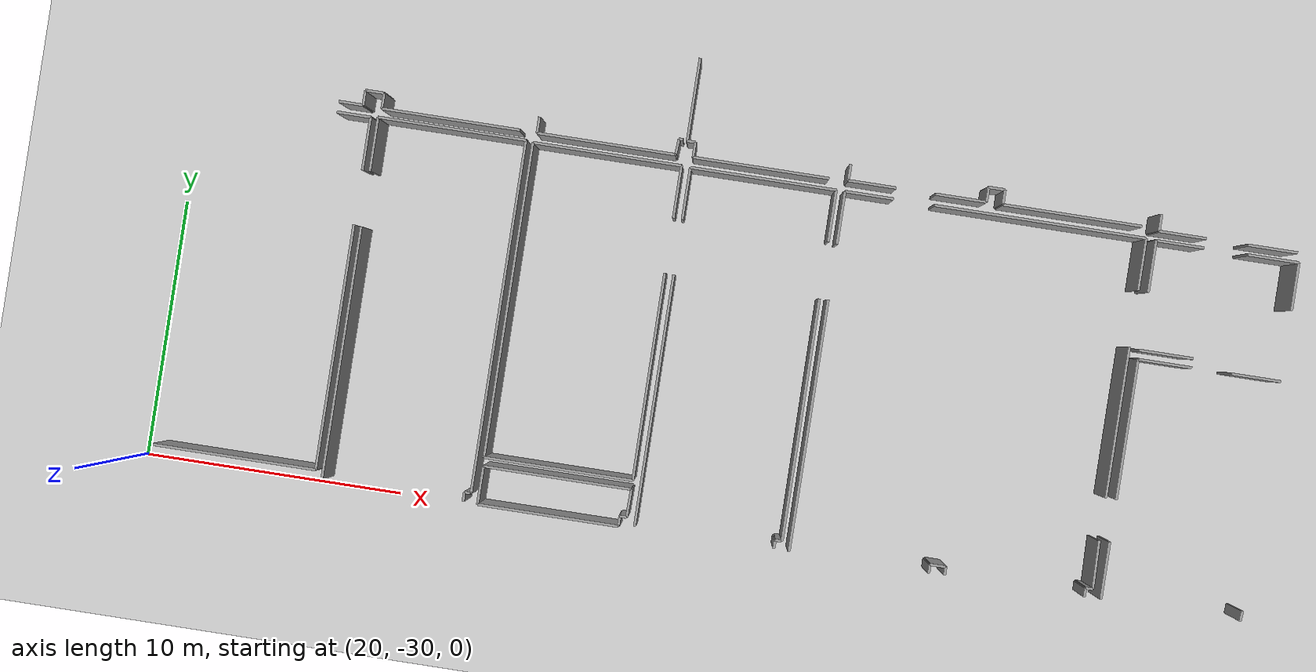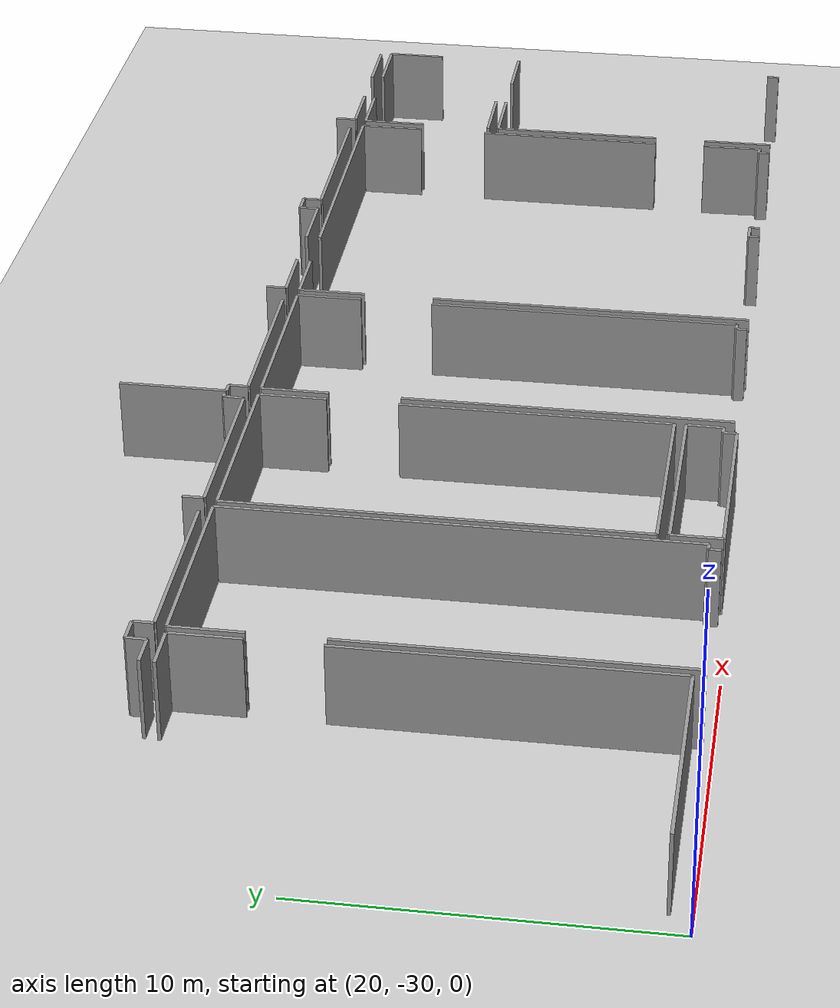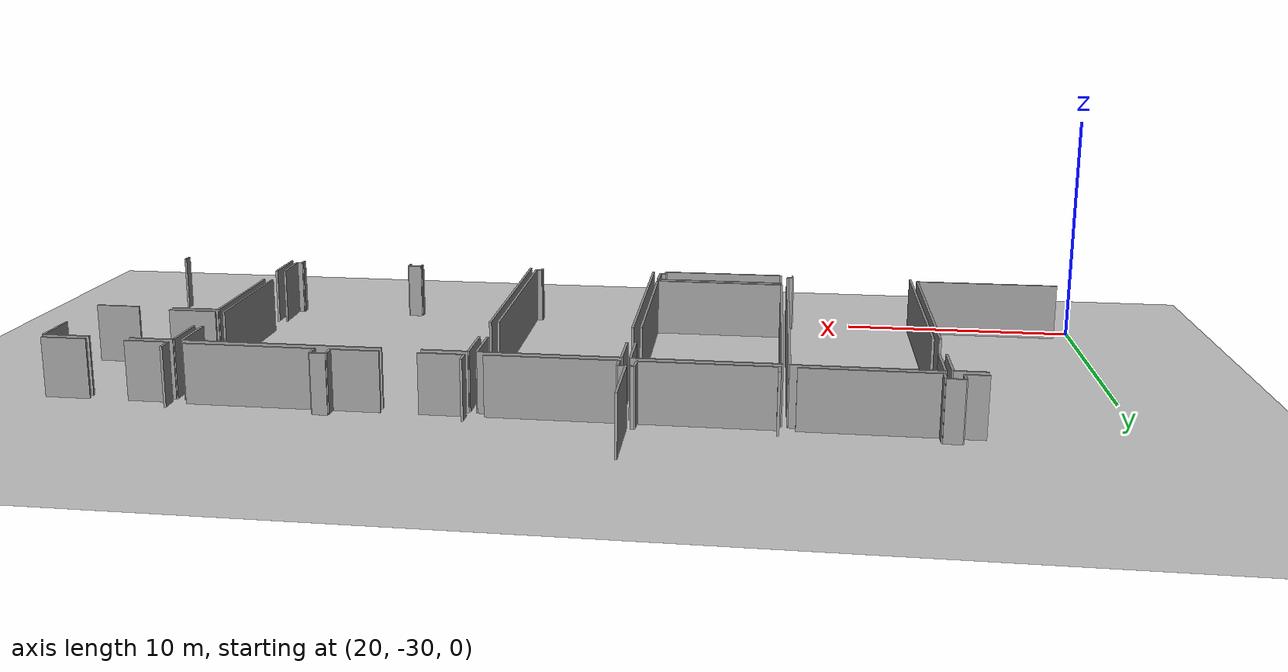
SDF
<sdf version="1.6">
 <world name="default">
  <model name="ground_plane">
   <static>1</static>
   <link name="link">
    <collision name="collision">
     <geometry><plane><normal>0 0 1</normal><size>100 100</size></plane></geometry>
     <surface><friction><ode><mu>100</mu><mu2>50</mu2></ode></friction></surface>
    </collision>
    <visual name="visual">
     <cast_shadows>0</cast_shadows>
     <geometry><plane><normal>0 0 1</normal><size>100 100</size></plane></geometry>
     <material>
      <script><uri>file://media/materials/scripts/gazebo.material</uri><name>Gazebo/Grey</name></script>
     </material>
    </visual>
   </link>
  </model>
  <model name="50010535_PLAN2">
   <static>1</static>
   <link name="Wall_336">
    <collision name="Wall_336_Collision">
     <geometry><box><size>1.90263209723 0.1 2.5</size></box></geometry>
     <pose>0.951316048614 0 1.25 0 0 0</pose>
    </collision>
    <visual name="Wall_336_Visual">
     <pose>0.951316048614 0 1.25 0 0 0</pose>
     <geometry><box><size>1.90263209723 0.1 2.5</size></box></geometry>
     <material>
      <script><uri>file://media/materials/scripts/gazebo.material</uri><name>Gazebo/Grey</name></script>
      <ambient>1 1 1 1</ambient>
     </material>
    </visual>
    <pose>165.319110817 -45.2468885599 0 0 0 3.14159265359</pose>
   </link>
   <link name="Wall_337">
    <collision name="Wall_337_Collision">
     <geometry><box><size>1.82969829038 0.1 2.5</size></box></geometry>
     <pose>0.914849145188 0 1.25 0 0 0</pose>
    </collision>
    <visual name="Wall_337_Visual">
     <pose>0.914849145188 0 1.25 0 0 0</pose>
     <geometry><box><size>1.82969829038 0.1 2.5</size></box></geometry>
     <material>
      <script><uri>file://media/materials/scripts/gazebo.material</uri><name>Gazebo/Grey</name></script>
      <ambient>1 1 1 1</ambient>
     </material>
    </visual>
    <pose>161.797703983 -45.2468885599 0 0 0 3.14159265359</pose>
   </link>
   <link name="Wall_338">
    <collision name="Wall_338_Collision">
     <geometry><box><size>0.657420760722 0.1 2.5</size></box></geometry>
     <pose>0.328710380361 0 1.25 0 0 0</pose>
    </collision>
    <visual name="Wall_338_Visual">
     <pose>0.328710380361 0 1.25 0 0 0</pose>
     <geometry><box><size>0.657420760722 0.1 2.5</size></box></geometry>
     <material>
      <script><uri>file://media/materials/scripts/gazebo.material</uri><name>Gazebo/Grey</name></script>
      <ambient>1 1 1 1</ambient>
     </material>
    </visual>
    <pose>159.968005692 -45.2468885599 0 0 0 1.57079632679</pose>
   </link>
   <link name="Wall_341">
    <collision name="Wall_341_Collision">
     <geometry><box><size>5.38007534799 0.1 2.5</size></box></geometry>
     <pose>2.690037674 0 1.25 0 0 0</pose>
    </collision>
    <visual name="Wall_341_Visual">
     <pose>2.690037674 0 1.25 0 0 0</pose>
     <geometry><box><size>5.38007534799 0.1 2.5</size></box></geometry>
     <material>
      <script><uri>file://media/materials/scripts/gazebo.material</uri><name>Gazebo/Grey</name></script>
      <ambient>1 1 1 1</ambient>
     </material>
    </visual>
    <pose>159.306010686 -45.1617567645 0 0 0 3.14159265359</pose>
   </link>
   <link name="Wall_342">
    <collision name="Wall_342_Collision">
     <geometry><box><size>0.570764216692 0.1 2.5</size></box></geometry>
     <pose>0.285382108346 0 1.25 0 0 0</pose>
    </collision>
    <visual name="Wall_342_Visual">
     <pose>0.285382108346 0 1.25 0 0 0</pose>
     <geometry><box><size>0.570764216692 0.1 2.5</size></box></geometry>
     <material>
      <script><uri>file://media/materials/scripts/gazebo.material</uri><name>Gazebo/Grey</name></script>
      <ambient>1 1 1 1</ambient>
     </material>
    </visual>
    <pose>153.925935338 -45.1617567645 0 0 0 1.57079632679</pose>
   </link>
   <link name="Wall_343">
    <collision name="Wall_343_Collision">
     <geometry><box><size>0.631754159705 0.1 2.5</size></box></geometry>
     <pose>0.315877079852 0 1.25 0 0 0</pose>
    </collision>
    <visual name="Wall_343_Visual">
     <pose>0.315877079852 0 1.25 0 0 0</pose>
     <geometry><box><size>0.631754159705 0.1 2.5</size></box></geometry>
     <material>
      <script><uri>file://media/materials/scripts/gazebo.material</uri><name>Gazebo/Grey</name></script>
      <ambient>1 1 1 1</ambient>
     </material>
    </visual>
    <pose>153.925935338 -44.5909925478 0 0 0 3.14159265359</pose>
   </link>
   <link name="Wall_344">
    <collision name="Wall_344_Collision">
     <geometry><box><size>0.568477093829 0.1 2.5</size></box></geometry>
     <pose>0.284238546915 0 1.25 0 0 0</pose>
    </collision>
    <visual name="Wall_344_Visual">
     <pose>0.284238546915 0 1.25 0 0 0</pose>
     <geometry><box><size>0.568477093829 0.1 2.5</size></box></geometry>
     <material>
      <script><uri>file://media/materials/scripts/gazebo.material</uri><name>Gazebo/Grey</name></script>
      <ambient>1 1 1 1</ambient>
     </material>
    </visual>
    <pose>153.294181178 -44.5909925478 0 0 0 -1.57079632679</pose>
   </link>
   <link name="Wall_345">
    <collision name="Wall_345_Collision">
     <geometry><box><size>1.95828542023 0.1 2.5</size></box></geometry>
     <pose>0.979142710114 0 1.25 0 0 0</pose>
    </collision>
    <visual name="Wall_345_Visual">
     <pose>0.979142710114 0 1.25 0 0 0</pose>
     <geometry><box><size>1.95828542023 0.1 2.5</size></box></geometry>
     <material>
      <script><uri>file://media/materials/scripts/gazebo.material</uri><name>Gazebo/Grey</name></script>
      <ambient>1 1 1 1</ambient>
     </material>
    </visual>
    <pose>153.294181178 -45.1594696416 0 0 0 3.14159265359</pose>
   </link>
   <link name="Wall_346">
    <collision name="Wall_346_Collision">
     <geometry><box><size>1.85460251711 0.1 2.5</size></box></geometry>
     <pose>0.927301258553 0 1.25 0 0 0</pose>
    </collision>
    <visual name="Wall_346_Visual">
     <pose>0.927301258553 0 1.25 0 0 0</pose>
     <geometry><box><size>1.85460251711 0.1 2.5</size></box></geometry>
     <material>
      <script><uri>file://media/materials/scripts/gazebo.material</uri><name>Gazebo/Grey</name></script>
      <ambient>1 1 1 1</ambient>
     </material>
    </visual>
    <pose>149.815213179 -45.1594696416 0 0 0 3.14159265359</pose>
   </link>
   <link name="Wall_347">
    <collision name="Wall_347_Collision">
     <geometry><box><size>0.615998424426 0.1 2.5</size></box></geometry>
     <pose>0.307999212213 0 1.25 0 0 0</pose>
    </collision>
    <visual name="Wall_347_Visual">
     <pose>0.307999212213 0 1.25 0 0 0</pose>
     <geometry><box><size>0.615998424426 0.1 2.5</size></box></geometry>
     <material>
      <script><uri>file://media/materials/scripts/gazebo.material</uri><name>Gazebo/Grey</name></script>
      <ambient>1 1 1 1</ambient>
     </material>
    </visual>
    <pose>147.960610662 -45.1594696416 0 0 0 1.57079632679</pose>
   </link>
   <link name="Wall_350">
    <collision name="Wall_350_Collision">
     <geometry><box><size>5.2517423429 0.1 2.5</size></box></geometry>
     <pose>2.62587117145 0 1.25 0 0 0</pose>
    </collision>
    <visual name="Wall_350_Visual">
     <pose>2.62587117145 0 1.25 0 0 0</pose>
     <geometry><box><size>5.2517423429 0.1 2.5</size></box></geometry>
     <material>
      <script><uri>file://media/materials/scripts/gazebo.material</uri><name>Gazebo/Grey</name></script>
      <ambient>1 1 1 1</ambient>
     </material>
    </visual>
    <pose>147.225427724 -45.1953012331 0 0 0 3.14159265359</pose>
   </link>
   <link name="Wall_351">
    <collision name="Wall_351_Collision">
     <geometry><box><size>0.579150333856 0.1 2.5</size></box></geometry>
     <pose>0.289575166928 0 1.25 0 0 0</pose>
    </collision>
    <visual name="Wall_351_Visual">
     <pose>0.289575166928 0 1.25 0 0 0</pose>
     <geometry><box><size>0.579150333856 0.1 2.5</size></box></geometry>
     <material>
      <script><uri>file://media/materials/scripts/gazebo.material</uri><name>Gazebo/Grey</name></script>
      <ambient>1 1 1 1</ambient>
     </material>
    </visual>
    <pose>141.973685381 -45.1953012331 0 0 0 1.57079632679</pose>
   </link>
   <link name="Wall_352">
    <collision name="Wall_352_Collision">
     <geometry><box><size>0.315877079852 0.1 2.5</size></box></geometry>
     <pose>0.157938539926 0 1.25 0 0 0</pose>
    </collision>
    <visual name="Wall_352_Visual">
     <pose>0.157938539926 0 1.25 0 0 0</pose>
     <geometry><box><size>0.315877079852 0.1 2.5</size></box></geometry>
     <material>
      <script><uri>file://media/materials/scripts/gazebo.material</uri><name>Gazebo/Grey</name></script>
      <ambient>1 1 1 1</ambient>
     </material>
    </visual>
    <pose>141.973685381 -44.6161508993 0 0 0 3.14159265359</pose>
   </link>
   <link name="Wall_353">
    <collision name="Wall_353_Collision">
     <geometry><box><size>3.19688951291 0.1 2.5</size></box></geometry>
     <pose>1.59844475645 0 1.25 0 0 0</pose>
    </collision>
    <visual name="Wall_353_Visual">
     <pose>1.59844475645 0 1.25 0 0 0</pose>
     <geometry><box><size>3.19688951291 0.1 2.5</size></box></geometry>
     <material>
      <script><uri>file://media/materials/scripts/gazebo.material</uri><name>Gazebo/Grey</name></script>
      <ambient>1 1 1 1</ambient>
     </material>
    </visual>
    <pose>141.657808301 -44.6161508993 0 0 0 1.57079632679</pose>
   </link>
   <link name="Wall_573">
    <collision name="Wall_573_Collision">
     <geometry><box><size>2.08153593006 0.1 2.5</size></box></geometry>
     <pose>1.04076796503 0 1.25 0 0 0</pose>
    </collision>
    <visual name="Wall_573_Visual">
     <pose>1.04076796503 0 1.25 0 0 0</pose>
     <geometry><box><size>2.08153593006 0.1 2.5</size></box></geometry>
     <material>
      <script><uri>file://media/materials/scripts/gazebo.material</uri><name>Gazebo/Grey</name></script>
      <ambient>1 1 1 1</ambient>
     </material>
    </visual>
    <pose>161.996175422 -49.8457843878 0 0 0 3.14159265359</pose>
   </link>
   <link name="Wall_574">
    <collision name="Wall_574_Collision">
     <geometry><box><size>2.0052985013 0.1 2.5</size></box></geometry>
     <pose>1.00264925065 0 1.25 0 0 0</pose>
    </collision>
    <visual name="Wall_574_Visual">
     <pose>1.00264925065 0 1.25 0 0 0</pose>
     <geometry><box><size>2.0052985013 0.1 2.5</size></box></geometry>
     <material>
      <script><uri>file://media/materials/scripts/gazebo.material</uri><name>Gazebo/Grey</name></script>
      <ambient>1 1 1 1</ambient>
     </material>
    </visual>
    <pose>159.914639492 -47.6181267193 0 0 0 1.57079632679</pose>
   </link>
   <link name="Wall_575">
    <collision name="Wall_575_Collision">
     <geometry><box><size>1.84774114852 0.1 2.5</size></box></geometry>
     <pose>0.923870574258 0 1.25 0 0 0</pose>
    </collision>
    <visual name="Wall_575_Visual">
     <pose>0.923870574258 0 1.25 0 0 0</pose>
     <geometry><box><size>1.84774114852 0.1 2.5</size></box></geometry>
     <material>
      <script><uri>file://media/materials/scripts/gazebo.material</uri><name>Gazebo/Grey</name></script>
      <ambient>1 1 1 1</ambient>
     </material>
    </visual>
    <pose>159.914639492 -45.612828218 0 0 0 0.0</pose>
   </link>
   <link name="Wall_576">
    <collision name="Wall_576_Collision">
     <geometry><box><size>1.97378703074 0.1 2.5</size></box></geometry>
     <pose>0.986893515371 0 1.25 0 0 0</pose>
    </collision>
    <visual name="Wall_576_Visual">
     <pose>0.986893515371 0 1.25 0 0 0</pose>
     <geometry><box><size>1.97378703074 0.1 2.5</size></box></geometry>
     <material>
      <script><uri>file://media/materials/scripts/gazebo.material</uri><name>Gazebo/Grey</name></script>
      <ambient>1 1 1 1</ambient>
     </material>
    </visual>
    <pose>163.449514939 -45.612828218 0 0 0 0.0</pose>
   </link>
   <link name="Wall_577">
    <collision name="Wall_577_Collision">
     <geometry><box><size>1.84621639994 0.1 2.5</size></box></geometry>
     <pose>0.923108199971 0 1.25 0 0 0</pose>
    </collision>
    <visual name="Wall_577_Visual">
     <pose>0.923108199971 0 1.25 0 0 0</pose>
     <geometry><box><size>1.84621639994 0.1 2.5</size></box></geometry>
     <material>
      <script><uri>file://media/materials/scripts/gazebo.material</uri><name>Gazebo/Grey</name></script>
      <ambient>1 1 1 1</ambient>
     </material>
    </visual>
    <pose>165.42330197 -45.612828218 0 0 0 -1.57079632679</pose>
   </link>
   <link name="Wall_579">
    <collision name="Wall_579_Collision">
     <geometry><box><size>2.22587879519 0.1 2.5</size></box></geometry>
     <pose>1.1129393976 0 1.25 0 0 0</pose>
    </collision>
    <visual name="Wall_579_Visual">
     <pose>1.1129393976 0 1.25 0 0 0</pose>
     <geometry><box><size>2.22587879519 0.1 2.5</size></box></geometry>
     <material>
      <script><uri>file://media/materials/scripts/gazebo.material</uri><name>Gazebo/Grey</name></script>
      <ambient>1 1 1 1</ambient>
     </material>
    </visual>
    <pose>159.930903477 -59.4608489038 0 0 0 1.57079632679</pose>
   </link>
   <link name="Wall_580">
    <collision name="Wall_580_Collision">
     <geometry><box><size>5.40828319664 0.1 2.5</size></box></geometry>
     <pose>2.70414159832 0 1.25 0 0 0</pose>
    </collision>
    <visual name="Wall_580_Visual">
     <pose>2.70414159832 0 1.25 0 0 0</pose>
     <geometry><box><size>5.40828319664 0.1 2.5</size></box></geometry>
     <material>
      <script><uri>file://media/materials/scripts/gazebo.material</uri><name>Gazebo/Grey</name></script>
      <ambient>1 1 1 1</ambient>
     </material>
    </visual>
    <pose>159.930903477 -55.6057762559 0 0 0 1.57079632679</pose>
   </link>
   <link name="Wall_581">
    <collision name="Wall_581_Collision">
     <geometry><box><size>2.07797818339 0.1 2.5</size></box></geometry>
     <pose>1.03898909169 0 1.25 0 0 0</pose>
    </collision>
    <visual name="Wall_581_Visual">
     <pose>1.03898909169 0 1.25 0 0 0</pose>
     <geometry><box><size>2.07797818339 0.1 2.5</size></box></geometry>
     <material>
      <script><uri>file://media/materials/scripts/gazebo.material</uri><name>Gazebo/Grey</name></script>
      <ambient>1 1 1 1</ambient>
     </material>
    </visual>
    <pose>159.930903477 -50.1974930592 0 0 0 0.0</pose>
   </link>
   <link name="Wall_582">
    <collision name="Wall_582_Collision">
     <geometry><box><size>1.91787958298 0.1 2.5</size></box></geometry>
     <pose>0.958939791491 0 1.25 0 0 0</pose>
    </collision>
    <visual name="Wall_582_Visual">
     <pose>0.958939791491 0 1.25 0 0 0</pose>
     <geometry><box><size>1.91787958298 0.1 2.5</size></box></geometry>
     <material>
      <script><uri>file://media/materials/scripts/gazebo.material</uri><name>Gazebo/Grey</name></script>
      <ambient>1 1 1 1</ambient>
     </material>
    </visual>
    <pose>163.527022992 -50.1974930592 0 0 0 0.0</pose>
   </link>
   <link name="Wall_585">
    <collision name="Wall_585_Collision">
     <geometry><box><size>0.392657709022 0.1 2.5</size></box></geometry>
     <pose>0.196328854511 0 1.25 0 0 0</pose>
    </collision>
    <visual name="Wall_585_Visual">
     <pose>0.196328854511 0 1.25 0 0 0</pose>
     <geometry><box><size>0.392657709022 0.1 2.5</size></box></geometry>
     <material>
      <script><uri>file://media/materials/scripts/gazebo.material</uri><name>Gazebo/Grey</name></script>
      <ambient>1 1 1 1</ambient>
     </material>
    </visual>
    <pose>165.338170175 -59.0692426447 0 0 0 -1.64399432283</pose>
   </link>
   <link name="Wall_586">
    <collision name="Wall_586_Collision">
     <geometry><box><size>0.278012490232 0.1 2.5</size></box></geometry>
     <pose>0.139006245116 0 1.25 0 0 0</pose>
    </collision>
    <visual name="Wall_586_Visual">
     <pose>0.139006245116 0 1.25 0 0 0</pose>
     <geometry><box><size>0.278012490232 0.1 2.5</size></box></geometry>
     <material>
      <script><uri>file://media/materials/scripts/gazebo.material</uri><name>Gazebo/Grey</name></script>
      <ambient>1 1 1 1</ambient>
     </material>
    </visual>
    <pose>159.573604061 -59.1205758467 0 0 0 3.14159265359</pose>
   </link>
   <link name="Wall_587">
    <collision name="Wall_587_Collision">
     <geometry><box><size>0.341289556108 0.1 2.5</size></box></geometry>
     <pose>0.170644778054 0 1.25 0 0 0</pose>
    </collision>
    <visual name="Wall_587_Visual">
     <pose>0.170644778054 0 1.25 0 0 0</pose>
     <geometry><box><size>0.341289556108 0.1 2.5</size></box></geometry>
     <material>
      <script><uri>file://media/materials/scripts/gazebo.material</uri><name>Gazebo/Grey</name></script>
      <ambient>1 1 1 1</ambient>
     </material>
    </visual>
    <pose>159.295591571 -59.1205758467 0 0 0 -1.57079632679</pose>
   </link>
   <link name="Wall_588">
    <collision name="Wall_588_Collision">
     <geometry><box><size>0.315877079852 0.1 2.5</size></box></geometry>
     <pose>0.157938539926 0 1.25 0 0 0</pose>
    </collision>
    <visual name="Wall_588_Visual">
     <pose>0.157938539926 0 1.25 0 0 0</pose>
     <geometry><box><size>0.315877079852 0.1 2.5</size></box></geometry>
     <material>
      <script><uri>file://media/materials/scripts/gazebo.material</uri><name>Gazebo/Grey</name></script>
      <ambient>1 1 1 1</ambient>
     </material>
    </visual>
    <pose>153.900776986 -59.4618654028 0 0 0 1.57079632679</pose>
   </link>
   <link name="Wall_589">
    <collision name="Wall_589_Collision">
     <geometry><box><size>0.606595808212 0.1 2.5</size></box></geometry>
     <pose>0.303297904106 0 1.25 0 0 0</pose>
    </collision>
    <visual name="Wall_589_Visual">
     <pose>0.303297904106 0 1.25 0 0 0</pose>
     <geometry><box><size>0.606595808212 0.1 2.5</size></box></geometry>
     <material>
      <script><uri>file://media/materials/scripts/gazebo.material</uri><name>Gazebo/Grey</name></script>
      <ambient>1 1 1 1</ambient>
     </material>
    </visual>
    <pose>153.900776986 -59.145988323 0 0 0 3.14159265359</pose>
   </link>
   <link name="Wall_590">
    <collision name="Wall_590_Collision">
     <geometry><box><size>0.341035431345 0.1 2.5</size></box></geometry>
     <pose>0.170517715673 0 1.25 0 0 0</pose>
    </collision>
    <visual name="Wall_590_Visual">
     <pose>0.170517715673 0 1.25 0 0 0</pose>
     <geometry><box><size>0.341035431345 0.1 2.5</size></box></geometry>
     <material>
      <script><uri>file://media/materials/scripts/gazebo.material</uri><name>Gazebo/Grey</name></script>
      <ambient>1 1 1 1</ambient>
     </material>
    </visual>
    <pose>153.294181178 -59.145988323 0 0 0 -1.57079632679</pose>
   </link>
   <link name="Wall_591">
    <collision name="Wall_591_Collision">
     <geometry><box><size>9.71823916952 0.1 2.5</size></box></geometry>
     <pose>4.85911958476 0 1.25 0 0 0</pose>
    </collision>
    <visual name="Wall_591_Visual">
     <pose>4.85911958476 0 1.25 0 0 0</pose>
     <geometry><box><size>9.71823916952 0.1 2.5</size></box></geometry>
     <material>
      <script><uri>file://media/materials/scripts/gazebo.material</uri><name>Gazebo/Grey</name></script>
      <ambient>1 1 1 1</ambient>
     </material>
    </visual>
    <pose>147.899366594 -59.4870237543 0 0 0 1.57079632679</pose>
   </link>
   <link name="Wall_592">
    <collision name="Wall_592_Collision">
     <geometry><box><size>2.04443371473 0.1 2.5</size></box></geometry>
     <pose>1.02221685737 0 1.25 0 0 0</pose>
    </collision>
    <visual name="Wall_592_Visual">
     <pose>1.02221685737 0 1.25 0 0 0</pose>
     <geometry><box><size>2.04443371473 0.1 2.5</size></box></geometry>
     <material>
      <script><uri>file://media/materials/scripts/gazebo.material</uri><name>Gazebo/Grey</name></script>
      <ambient>1 1 1 1</ambient>
     </material>
    </visual>
    <pose>147.899366594 -47.6336283298 0 0 0 1.57079632679</pose>
   </link>
   <link name="Wall_593">
    <collision name="Wall_593_Collision">
     <geometry><box><size>1.87620312192 0.1 2.5</size></box></geometry>
     <pose>0.938101560961 0 1.25 0 0 0</pose>
    </collision>
    <visual name="Wall_593_Visual">
     <pose>0.938101560961 0 1.25 0 0 0</pose>
     <geometry><box><size>1.87620312192 0.1 2.5</size></box></geometry>
     <material>
      <script><uri>file://media/materials/scripts/gazebo.material</uri><name>Gazebo/Grey</name></script>
      <ambient>1 1 1 1</ambient>
     </material>
    </visual>
    <pose>147.899366594 -45.5891946151 0 0 0 0.0</pose>
   </link>
   <link name="Wall_594">
    <collision name="Wall_594_Collision">
     <geometry><box><size>8.18307147894 0.1 2.5</size></box></geometry>
     <pose>4.09153573947 0 1.25 0 0 0</pose>
    </collision>
    <visual name="Wall_594_Visual">
     <pose>4.09153573947 0 1.25 0 0 0</pose>
     <geometry><box><size>8.18307147894 0.1 2.5</size></box></geometry>
     <material>
      <script><uri>file://media/materials/scripts/gazebo.material</uri><name>Gazebo/Grey</name></script>
      <ambient>1 1 1 1</ambient>
     </material>
    </visual>
    <pose>151.348347871 -45.5891946151 0 0 0 0.0</pose>
   </link>
   <link name="Wall_595">
    <collision name="Wall_595_Collision">
     <geometry><box><size>2.01063512131 0.1 2.5</size></box></geometry>
     <pose>1.00531756066 0 1.25 0 0 0</pose>
    </collision>
    <visual name="Wall_595_Visual">
     <pose>1.00531756066 0 1.25 0 0 0</pose>
     <geometry><box><size>2.01063512131 0.1 2.5</size></box></geometry>
     <material>
      <script><uri>file://media/materials/scripts/gazebo.material</uri><name>Gazebo/Grey</name></script>
      <ambient>1 1 1 1</ambient>
     </material>
    </visual>
    <pose>159.53141935 -45.5891946151 0 0 0 -1.57079632679</pose>
   </link>
   <link name="Wall_596">
    <collision name="Wall_596_Collision">
     <geometry><box><size>5.83648342154 0.1 2.5</size></box></geometry>
     <pose>2.91824171077 0 1.25 0 0 0</pose>
    </collision>
    <visual name="Wall_596_Visual">
     <pose>2.91824171077 0 1.25 0 0 0</pose>
     <geometry><box><size>5.83648342154 0.1 2.5</size></box></geometry>
     <material>
      <script><uri>file://media/materials/scripts/gazebo.material</uri><name>Gazebo/Grey</name></script>
      <ambient>1 1 1 1</ambient>
     </material>
    </visual>
    <pose>159.53141935 -49.7769165772 0 0 0 -1.57079632679</pose>
   </link>
   <link name="Wall_597">
    <collision name="Wall_597_Collision">
     <geometry><box><size>1.86346617925 0.1 2.5</size></box></geometry>
     <pose>0.931733089627 0 1.25 0 0 0</pose>
    </collision>
    <visual name="Wall_597_Visual">
     <pose>0.931733089627 0 1.25 0 0 0</pose>
     <geometry><box><size>1.86346617925 0.1 2.5</size></box></geometry>
     <material>
      <script><uri>file://media/materials/scripts/gazebo.material</uri><name>Gazebo/Grey</name></script>
      <ambient>1 1 1 1</ambient>
     </material>
    </visual>
    <pose>159.53141935 -57.2575872124 0 0 0 -1.54815662722</pose>
   </link>
   <link name="Wall_598">
    <collision name="Wall_598_Collision">
     <geometry><box><size>0.267339250205 0.1 2.5</size></box></geometry>
     <pose>0.133669625102 0 1.25 0 0 0</pose>
    </collision>
    <visual name="Wall_598_Visual">
     <pose>0.133669625102 0 1.25 0 0 0</pose>
     <geometry><box><size>0.267339250205 0.1 2.5</size></box></geometry>
     <material>
      <script><uri>file://media/materials/scripts/gazebo.material</uri><name>Gazebo/Grey</name></script>
      <ambient>1 1 1 1</ambient>
     </material>
    </visual>
    <pose>147.578152894 -59.1360774572 0 0 0 3.14159265359</pose>
   </link>
   <link name="Wall_599">
    <collision name="Wall_599_Collision">
     <geometry><box><size>0.315368830327 0.1 2.5</size></box></geometry>
     <pose>0.157684415164 0 1.25 0 0 0</pose>
    </collision>
    <visual name="Wall_599_Visual">
     <pose>0.157684415164 0 1.25 0 0 0</pose>
     <geometry><box><size>0.315368830327 0.1 2.5</size></box></geometry>
     <material>
      <script><uri>file://media/materials/scripts/gazebo.material</uri><name>Gazebo/Grey</name></script>
      <ambient>1 1 1 1</ambient>
     </material>
    </visual>
    <pose>147.310813644 -59.1360774572 0 0 0 -1.57079632679</pose>
   </link>
   <link name="Wall_600">
    <collision name="Wall_600_Collision">
     <geometry><box><size>9.71544379713 0.1 2.5</size></box></geometry>
     <pose>4.85772189857 0 1.25 0 0 0</pose>
    </collision>
    <visual name="Wall_600_Visual">
     <pose>4.85772189857 0 1.25 0 0 0</pose>
     <geometry><box><size>9.71544379713 0.1 2.5</size></box></geometry>
     <material>
      <script><uri>file://media/materials/scripts/gazebo.material</uri><name>Gazebo/Grey</name></script>
      <ambient>1 1 1 1</ambient>
     </material>
    </visual>
    <pose>141.93200892 -59.4514462876 0 0 0 1.57079632679</pose>
   </link>
   <link name="Wall_601">
    <collision name="Wall_601_Collision">
     <geometry><box><size>2.01063512131 0.1 2.5</size></box></geometry>
     <pose>1.00531756066 0 1.25 0 0 0</pose>
    </collision>
    <visual name="Wall_601_Visual">
     <pose>1.00531756066 0 1.25 0 0 0</pose>
     <geometry><box><size>2.01063512131 0.1 2.5</size></box></geometry>
     <material>
      <script><uri>file://media/materials/scripts/gazebo.material</uri><name>Gazebo/Grey</name></script>
      <ambient>1 1 1 1</ambient>
     </material>
    </visual>
    <pose>141.93200892 -47.6046581069 0 0 0 1.57079632679</pose>
   </link>
   <link name="Wall_602">
    <collision name="Wall_602_Collision">
     <geometry><box><size>5.62962586482 0.1 2.5</size></box></geometry>
     <pose>2.81481293241 0 1.25 0 0 0</pose>
    </collision>
    <visual name="Wall_602_Visual">
     <pose>2.81481293241 0 1.25 0 0 0</pose>
     <geometry><box><size>5.62962586482 0.1 2.5</size></box></geometry>
     <material>
      <script><uri>file://media/materials/scripts/gazebo.material</uri><name>Gazebo/Grey</name></script>
      <ambient>1 1 1 1</ambient>
     </material>
    </visual>
    <pose>141.93200892 -45.5940229856 0 0 0 0.0</pose>
   </link>
   <link name="Wall_603">
    <collision name="Wall_603_Collision">
     <geometry><box><size>1.98852626697 0.1 2.5</size></box></geometry>
     <pose>0.994263133485 0 1.25 0 0 0</pose>
    </collision>
    <visual name="Wall_603_Visual">
     <pose>0.994263133485 0 1.25 0 0 0</pose>
     <geometry><box><size>1.98852626697 0.1 2.5</size></box></geometry>
     <material>
      <script><uri>file://media/materials/scripts/gazebo.material</uri><name>Gazebo/Grey</name></script>
      <ambient>1 1 1 1</ambient>
     </material>
    </visual>
    <pose>147.561634785 -45.5940229856 0 0 0 -1.57079632679</pose>
   </link>
   <link name="Wall_604">
    <collision name="Wall_604_Collision">
     <geometry><box><size>9.35333059611 0.1 2.5</size></box></geometry>
     <pose>4.67666529806 0 1.25 0 0 0</pose>
    </collision>
    <visual name="Wall_604_Visual">
     <pose>4.67666529806 0 1.25 0 0 0</pose>
     <geometry><box><size>9.35333059611 0.1 2.5</size></box></geometry>
     <material>
      <script><uri>file://media/materials/scripts/gazebo.material</uri><name>Gazebo/Grey</name></script>
      <ambient>1 1 1 1</ambient>
     </material>
    </visual>
    <pose>147.561634785 -49.7827614467 0 0 0 -1.56903031222</pose>
   </link>
   <link name="Wall_605">
    <collision name="Wall_605_Collision">
     <geometry><box><size>5.74321963368 0.1 2.5</size></box></geometry>
     <pose>2.87160981684 0 1.25 0 0 0</pose>
    </collision>
    <visual name="Wall_605_Visual">
     <pose>2.87160981684 0 1.25 0 0 0</pose>
     <geometry><box><size>5.74321963368 0.1 2.5</size></box></geometry>
     <material>
      <script><uri>file://media/materials/scripts/gazebo.material</uri><name>Gazebo/Grey</name></script>
      <ambient>1 1 1 1</ambient>
     </material>
    </visual>
    <pose>141.59478536 -57.7277180232 0 0 0 3.14159265359</pose>
   </link>
   <link name="Wall_606">
    <collision name="Wall_606_Collision">
     <geometry><box><size>12.1474177748 0.1 2.5</size></box></geometry>
     <pose>6.07370888738 0 1.25 0 0 0</pose>
    </collision>
    <visual name="Wall_606_Visual">
     <pose>6.07370888738 0 1.25 0 0 0</pose>
     <geometry><box><size>12.1474177748 0.1 2.5</size></box></geometry>
     <material>
      <script><uri>file://media/materials/scripts/gazebo.material</uri><name>Gazebo/Grey</name></script>
      <ambient>1 1 1 1</ambient>
     </material>
    </visual>
    <pose>135.851565726 -57.7277180232 0 0 0 1.57079632679</pose>
   </link>
   <link name="Wall_607">
    <collision name="Wall_607_Collision">
     <geometry><box><size>5.7355958908 0.1 2.5</size></box></geometry>
     <pose>2.8677979454 0 1.25 0 0 0</pose>
    </collision>
    <visual name="Wall_607_Visual">
     <pose>2.8677979454 0 1.25 0 0 0</pose>
     <geometry><box><size>5.7355958908 0.1 2.5</size></box></geometry>
     <material>
      <script><uri>file://media/materials/scripts/gazebo.material</uri><name>Gazebo/Grey</name></script>
      <ambient>1 1 1 1</ambient>
     </material>
    </visual>
    <pose>135.851565726 -45.5803002484 0 0 0 0.0</pose>
   </link>
   <link name="Wall_608">
    <collision name="Wall_608_Collision">
     <geometry><box><size>2.019529488 0.1 2.5</size></box></geometry>
     <pose>1.009764744 0 1.25 0 0 0</pose>
    </collision>
    <visual name="Wall_608_Visual">
     <pose>1.009764744 0 1.25 0 0 0</pose>
     <geometry><box><size>2.019529488 0.1 2.5</size></box></geometry>
     <material>
      <script><uri>file://media/materials/scripts/gazebo.material</uri><name>Gazebo/Grey</name></script>
      <ambient>1 1 1 1</ambient>
     </material>
    </visual>
    <pose>141.587161617 -45.5803002484 0 0 0 -1.57079632679</pose>
   </link>
   <link name="Wall_609">
    <collision name="Wall_609_Collision">
     <geometry><box><size>8.00722077257 0.1 2.5</size></box></geometry>
     <pose>4.00361038629 0 1.25 0 0 0</pose>
    </collision>
    <visual name="Wall_609_Visual">
     <pose>4.00361038629 0 1.25 0 0 0</pose>
     <geometry><box><size>8.00722077257 0.1 2.5</size></box></geometry>
     <material>
      <script><uri>file://media/materials/scripts/gazebo.material</uri><name>Gazebo/Grey</name></script>
      <ambient>1 1 1 1</ambient>
     </material>
    </visual>
    <pose>141.587161617 -49.7205008799 0 0 0 -1.56984421816</pose>
   </link>
   <link name="Wall_610">
    <collision name="Wall_610_Collision">
     <geometry><box><size>0.247771643488 0.1 2.5</size></box></geometry>
     <pose>0.123885821744 0 1.25 0 0 0</pose>
    </collision>
    <visual name="Wall_610_Visual">
     <pose>0.123885821744 0 1.25 0 0 0</pose>
     <geometry><box><size>0.247771643488 0.1 2.5</size></box></geometry>
     <material>
      <script><uri>file://media/materials/scripts/gazebo.material</uri><name>Gazebo/Grey</name></script>
      <ambient>1 1 1 1</ambient>
     </material>
    </visual>
    <pose>135.572536737 -59.1599651849 0 0 0 3.14159265359</pose>
   </link>
   <link name="Wall_611">
    <collision name="Wall_611_Collision">
     <geometry><box><size>0.354249918998 0.1 2.5</size></box></geometry>
     <pose>0.177124959499 0 1.25 0 0 0</pose>
    </collision>
    <visual name="Wall_611_Visual">
     <pose>0.177124959499 0 1.25 0 0 0</pose>
     <geometry><box><size>0.354249918998 0.1 2.5</size></box></geometry>
     <material>
      <script><uri>file://media/materials/scripts/gazebo.material</uri><name>Gazebo/Grey</name></script>
      <ambient>1 1 1 1</ambient>
     </material>
    </visual>
    <pose>135.324765093 -59.1599651849 0 0 0 -1.57079632679</pose>
   </link>
   <link name="Wall_612">
    <collision name="Wall_612_Collision">
     <geometry><box><size>9.75737438295 0.1 2.5</size></box></geometry>
     <pose>4.87868719148 0 1.25 0 0 0</pose>
    </collision>
    <visual name="Wall_612_Visual">
     <pose>4.87868719148 0 1.25 0 0 0</pose>
     <geometry><box><size>9.75737438295 0.1 2.5</size></box></geometry>
     <material>
      <script><uri>file://media/materials/scripts/gazebo.material</uri><name>Gazebo/Grey</name></script>
      <ambient>1 1 1 1</ambient>
     </material>
    </visual>
    <pose>129.869977065 -59.5142151039 0 0 0 1.57079632679</pose>
   </link>
   <link name="Wall_613">
    <collision name="Wall_613_Collision">
     <geometry><box><size>2.0772158091 0.1 2.5</size></box></geometry>
     <pose>1.03860790455 0 1.25 0 0 0</pose>
    </collision>
    <visual name="Wall_613_Visual">
     <pose>1.03860790455 0 1.25 0 0 0</pose>
     <geometry><box><size>2.0772158091 0.1 2.5</size></box></geometry>
     <material>
      <script><uri>file://media/materials/scripts/gazebo.material</uri><name>Gazebo/Grey</name></script>
      <ambient>1 1 1 1</ambient>
     </material>
    </visual>
    <pose>129.869977065 -47.6112653507 0 0 0 1.57079632679</pose>
   </link>
   <link name="Wall_614">
    <collision name="Wall_614_Collision">
     <geometry><box><size>5.70535504406 0.1 2.5</size></box></geometry>
     <pose>2.85267752203 0 1.25 0 0 0</pose>
    </collision>
    <visual name="Wall_614_Visual">
     <pose>2.85267752203 0 1.25 0 0 0</pose>
     <geometry><box><size>5.70535504406 0.1 2.5</size></box></geometry>
     <material>
      <script><uri>file://media/materials/scripts/gazebo.material</uri><name>Gazebo/Grey</name></script>
      <ambient>1 1 1 1</ambient>
     </material>
    </visual>
    <pose>129.869977065 -45.5340495416 0 0 0 0.0</pose>
   </link>
   <link name="Wall_615">
    <collision name="Wall_615_Collision">
     <geometry><box><size>13.62591593 0.1 2.5</size></box></geometry>
     <pose>6.81295796501 0 1.25 0 0 0</pose>
    </collision>
    <visual name="Wall_615_Visual">
     <pose>6.81295796501 0 1.25 0 0 0</pose>
     <geometry><box><size>13.62591593 0.1 2.5</size></box></geometry>
     <material>
      <script><uri>file://media/materials/scripts/gazebo.material</uri><name>Gazebo/Grey</name></script>
      <ambient>1 1 1 1</ambient>
     </material>
    </visual>
    <pose>135.575332109 -45.5340495416 0 0 0 -1.57100147795</pose>
   </link>
   <link name="Wall_616">
    <collision name="Wall_616_Collision">
     <geometry><box><size>6.28247237981 0.1 2.5</size></box></geometry>
     <pose>3.14123618991 0 1.25 0 0 0</pose>
    </collision>
    <visual name="Wall_616_Visual">
     <pose>3.14123618991 0 1.25 0 0 0</pose>
     <geometry><box><size>6.28247237981 0.1 2.5</size></box></geometry>
     <material>
      <script><uri>file://media/materials/scripts/gazebo.material</uri><name>Gazebo/Grey</name></script>
      <ambient>1 1 1 1</ambient>
     </material>
    </visual>
    <pose>129.580528961 -59.1808034154 0 0 0 3.14159265359</pose>
   </link>
   <link name="Wall_620">
    <collision name="Wall_620_Collision">
     <geometry><box><size>1.30391415666 0.1 2.5</size></box></geometry>
     <pose>0.651957078328 0 1.25 0 0 0</pose>
    </collision>
    <visual name="Wall_620_Visual">
     <pose>0.651957078328 0 1.25 0 0 0</pose>
     <geometry><box><size>1.30391415666 0.1 2.5</size></box></geometry>
     <material>
      <script><uri>file://media/materials/scripts/gazebo.material</uri><name>Gazebo/Grey</name></script>
      <ambient>1 1 1 1</ambient>
     </material>
    </visual>
    <pose>128.282967923 -45.5803002484 0 0 0 0.0</pose>
   </link>
   <link name="Wall_621">
    <collision name="Wall_621_Collision">
     <geometry><box><size>2.03782647091 0.1 2.5</size></box></geometry>
     <pose>1.01891323545 0 1.25 0 0 0</pose>
    </collision>
    <visual name="Wall_621_Visual">
     <pose>1.01891323545 0 1.25 0 0 0</pose>
     <geometry><box><size>2.03782647091 0.1 2.5</size></box></geometry>
     <material>
      <script><uri>file://media/materials/scripts/gazebo.material</uri><name>Gazebo/Grey</name></script>
      <ambient>1 1 1 1</ambient>
     </material>
    </visual>
    <pose>129.58688208 -45.5803002484 0 0 0 -1.57079632679</pose>
   </link>
   <link name="Wall_622">
    <collision name="Wall_622_Collision">
     <geometry><box><size>9.45573042407 0.1 2.5</size></box></geometry>
     <pose>4.72786521204 0 1.25 0 0 0</pose>
    </collision>
    <visual name="Wall_622_Visual">
     <pose>4.72786521204 0 1.25 0 0 0</pose>
     <geometry><box><size>9.45573042407 0.1 2.5</size></box></geometry>
     <material>
      <script><uri>file://media/materials/scripts/gazebo.material</uri><name>Gazebo/Grey</name></script>
      <ambient>1 1 1 1</ambient>
     </material>
    </visual>
    <pose>129.58688208 -49.7250751256 0 0 0 -1.57146820715</pose>
   </link>
   <link name="Wall_623">
    <collision name="Wall_623_Collision">
     <geometry><box><size>5.34754737839 0.1 2.5</size></box></geometry>
     <pose>2.67377368919 0 1.25 0 0 0</pose>
    </collision>
    <visual name="Wall_623_Visual">
     <pose>2.67377368919 0 1.25 0 0 0</pose>
     <geometry><box><size>5.34754737839 0.1 2.5</size></box></geometry>
     <material>
      <script><uri>file://media/materials/scripts/gazebo.material</uri><name>Gazebo/Grey</name></script>
      <ambient>1 1 1 1</ambient>
     </material>
    </visual>
    <pose>141.299238261 -45.1986048551 0 0 0 3.14159265359</pose>
   </link>
   <link name="Wall_624">
    <collision name="Wall_624_Collision">
     <geometry><box><size>0.622097418728 0.1 2.5</size></box></geometry>
     <pose>0.311048709364 0 1.25 0 0 0</pose>
    </collision>
    <visual name="Wall_624_Visual">
     <pose>0.311048709364 0 1.25 0 0 0</pose>
     <geometry><box><size>0.622097418728 0.1 2.5</size></box></geometry>
     <material>
      <script><uri>file://media/materials/scripts/gazebo.material</uri><name>Gazebo/Grey</name></script>
      <ambient>1 1 1 1</ambient>
     </material>
    </visual>
    <pose>135.951690883 -45.1986048551 0 0 0 1.57079632679</pose>
   </link>
   <link name="Wall_627">
    <collision name="Wall_627_Collision">
     <geometry><box><size>5.33077514406 0.1 2.5</size></box></geometry>
     <pose>2.66538757203 0 1.25 0 0 0</pose>
    </collision>
    <visual name="Wall_627_Visual">
     <pose>2.66538757203 0 1.25 0 0 0</pose>
     <geometry><box><size>5.33077514406 0.1 2.5</size></box></geometry>
     <material>
      <script><uri>file://media/materials/scripts/gazebo.material</uri><name>Gazebo/Grey</name></script>
      <ambient>1 1 1 1</ambient>
     </material>
    </visual>
    <pose>135.292491249 -45.187931615 0 0 0 3.14159265359</pose>
   </link>
   <link name="Wall_628">
    <collision name="Wall_628_Collision">
     <geometry><box><size>0.592364821509 0.1 2.5</size></box></geometry>
     <pose>0.296182410755 0 1.25 0 0 0</pose>
    </collision>
    <visual name="Wall_628_Visual">
     <pose>0.296182410755 0 1.25 0 0 0</pose>
     <geometry><box><size>0.592364821509 0.1 2.5</size></box></geometry>
     <material>
      <script><uri>file://media/materials/scripts/gazebo.material</uri><name>Gazebo/Grey</name></script>
      <ambient>1 1 1 1</ambient>
     </material>
    </visual>
    <pose>129.961716105 -45.187931615 0 0 0 1.57079632679</pose>
   </link>
   <link name="Wall_629">
    <collision name="Wall_629_Collision">
     <geometry><box><size>0.726288571374 0.1 2.5</size></box></geometry>
     <pose>0.363144285687 0 1.25 0 0 0</pose>
    </collision>
    <visual name="Wall_629_Visual">
     <pose>0.363144285687 0 1.25 0 0 0</pose>
     <geometry><box><size>0.726288571374 0.1 2.5</size></box></geometry>
     <material>
      <script><uri>file://media/materials/scripts/gazebo.material</uri><name>Gazebo/Grey</name></script>
      <ambient>1 1 1 1</ambient>
     </material>
    </visual>
    <pose>129.961716105 -44.5955667935 0 0 0 3.14159265359</pose>
   </link>
   <link name="Wall_630">
    <collision name="Wall_630_Collision">
     <geometry><box><size>0.573305464318 0.1 2.5</size></box></geometry>
     <pose>0.286652732159 0 1.25 0 0 0</pose>
    </collision>
    <visual name="Wall_630_Visual">
     <pose>0.286652732159 0 1.25 0 0 0</pose>
     <geometry><box><size>0.573305464318 0.1 2.5</size></box></geometry>
     <material>
      <script><uri>file://media/materials/scripts/gazebo.material</uri><name>Gazebo/Grey</name></script>
      <ambient>1 1 1 1</ambient>
     </material>
    </visual>
    <pose>129.235427533 -44.5955667935 0 0 0 -1.57079632679</pose>
   </link>
   <link name="Wall_631">
    <collision name="Wall_631_Collision">
     <geometry><box><size>0.936195625242 0.1 2.5</size></box></geometry>
     <pose>0.468097812621 0 1.25 0 0 0</pose>
    </collision>
    <visual name="Wall_631_Visual">
     <pose>0.468097812621 0 1.25 0 0 0</pose>
     <geometry><box><size>0.936195625242 0.1 2.5</size></box></geometry>
     <material>
      <script><uri>file://media/materials/scripts/gazebo.material</uri><name>Gazebo/Grey</name></script>
      <ambient>1 1 1 1</ambient>
     </material>
    </visual>
    <pose>129.235427533 -45.1688722578 0 0 0 3.14159265359</pose>
   </link>
   <link name="Wall_645">
    <collision name="Wall_645_Collision">
     <geometry><box><size>0.151712483244 0.1 2.5</size></box></geometry>
     <pose>0.0758562416218 0 1.25 0 0 0</pose>
    </collision>
    <visual name="Wall_645_Visual">
     <pose>0.0758562416218 0 1.25 0 0 0</pose>
     <geometry><box><size>0.151712483244 0.1 2.5</size></box></geometry>
     <material>
      <script><uri>file://media/materials/scripts/gazebo.material</uri><name>Gazebo/Grey</name></script>
      <ambient>1 1 1 1</ambient>
     </material>
    </visual>
    <pose>141.493643704 -44.5909925478 0 0 0 3.14159265359</pose>
   </link>
   <link name="Wall_646">
    <collision name="Wall_646_Collision">
     <geometry><box><size>0.609110338756 0.1 2.5</size></box></geometry>
     <pose>0.304555169378 0 1.25 0 0 0</pose>
    </collision>
    <visual name="Wall_646_Visual">
     <pose>0.304555169378 0 1.25 0 0 0</pose>
     <geometry><box><size>0.609110338756 0.1 2.5</size></box></geometry>
     <material>
      <script><uri>file://media/materials/scripts/gazebo.material</uri><name>Gazebo/Grey</name></script>
      <ambient>1 1 1 1</ambient>
     </material>
    </visual>
    <pose>141.341931221 -44.5909925478 0 0 0 -1.6409445269</pose>
   </link>
   <link name="Wall_875">
    <collision name="Wall_875_Collision">
     <geometry><box><size>0.25793663399 0.1 2.5</size></box></geometry>
     <pose>0.128968316995 0 1.25 0 0 0</pose>
    </collision>
    <visual name="Wall_875_Visual">
     <pose>0.128968316995 0 1.25 0 0 0</pose>
     <geometry><box><size>0.25793663399 0.1 2.5</size></box></geometry>
     <material>
      <script><uri>file://media/materials/scripts/gazebo.material</uri><name>Gazebo/Grey</name></script>
      <ambient>1 1 1 1</ambient>
     </material>
    </visual>
    <pose>141.578521375 -59.1457341982 0 0 0 3.14159265359</pose>
   </link>
   <link name="Wall_876">
    <collision name="Wall_876_Collision">
     <geometry><box><size>0.391606259093 0.1 2.5</size></box></geometry>
     <pose>0.195803129546 0 1.25 0 0 0</pose>
    </collision>
    <visual name="Wall_876_Visual">
     <pose>0.195803129546 0 1.25 0 0 0</pose>
     <geometry><box><size>0.391606259093 0.1 2.5</size></box></geometry>
     <material>
      <script><uri>file://media/materials/scripts/gazebo.material</uri><name>Gazebo/Grey</name></script>
      <ambient>1 1 1 1</ambient>
     </material>
    </visual>
    <pose>141.320584741 -59.1457341982 0 0 0 -1.57079632679</pose>
   </link>
   <link name="Wall_877">
    <collision name="Wall_877_Collision">
     <geometry><box><size>5.43572867099 0.1 2.5</size></box></geometry>
     <pose>2.7178643355 0 1.25 0 0 0</pose>
    </collision>
    <visual name="Wall_877_Visual">
     <pose>2.7178643355 0 1.25 0 0 0</pose>
     <geometry><box><size>5.43572867099 0.1 2.5</size></box></geometry>
     <material>
      <script><uri>file://media/materials/scripts/gazebo.material</uri><name>Gazebo/Grey</name></script>
      <ambient>1 1 1 1</ambient>
     </material>
    </visual>
    <pose>141.320584741 -59.5373404573 0 0 0 3.14159265359</pose>
   </link>
   <link name="Wall_878">
    <collision name="Wall_878_Collision">
     <geometry><box><size>1.47112825041 0.1 2.5</size></box></geometry>
     <pose>0.735564125207 0 1.25 0 0 0</pose>
    </collision>
    <visual name="Wall_878_Visual">
     <pose>0.735564125207 0 1.25 0 0 0</pose>
     <geometry><box><size>1.47112825041 0.1 2.5</size></box></geometry>
     <material>
      <script><uri>file://media/materials/scripts/gazebo.material</uri><name>Gazebo/Grey</name></script>
      <ambient>1 1 1 1</ambient>
     </material>
    </visual>
    <pose>135.88485607 -59.5373404573 0 0 0 1.57079632679</pose>
   </link>
   <link name="Wall_879">
    <collision name="Wall_879_Collision">
     <geometry><box><size>5.71297878694 0.1 2.5</size></box></geometry>
     <pose>2.85648939347 0 1.25 0 0 0</pose>
    </collision>
    <visual name="Wall_879_Visual">
     <pose>2.85648939347 0 1.25 0 0 0</pose>
     <geometry><box><size>5.71297878694 0.1 2.5</size></box></geometry>
     <material>
      <script><uri>file://media/materials/scripts/gazebo.material</uri><name>Gazebo/Grey</name></script>
      <ambient>1 1 1 1</ambient>
     </material>
    </visual>
    <pose>135.88485607 -58.0662122069 0 0 0 0.0</pose>
   </link>
   <link name="Wall_880">
    <collision name="Wall_880_Collision">
     <geometry><box><size>1.07969474405 0.1 2.5</size></box></geometry>
     <pose>0.539847372026 0 1.25 0 0 0</pose>
    </collision>
    <visual name="Wall_880_Visual">
     <pose>0.539847372026 0 1.25 0 0 0</pose>
     <geometry><box><size>1.07969474405 0.1 2.5</size></box></geometry>
     <material>
      <script><uri>file://media/materials/scripts/gazebo.material</uri><name>Gazebo/Grey</name></script>
      <ambient>1 1 1 1</ambient>
     </material>
    </visual>
    <pose>141.597834857 -58.0662122069 0 0 0 -1.58868519046</pose>
   </link>
   <pose>-102.6 29.7873404573 0 0 0 0</pose>
  </model>
 </world>
</sdf>
